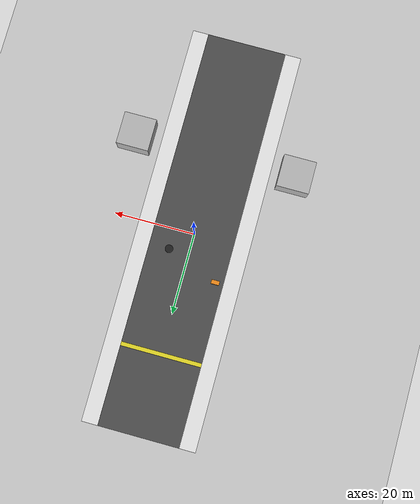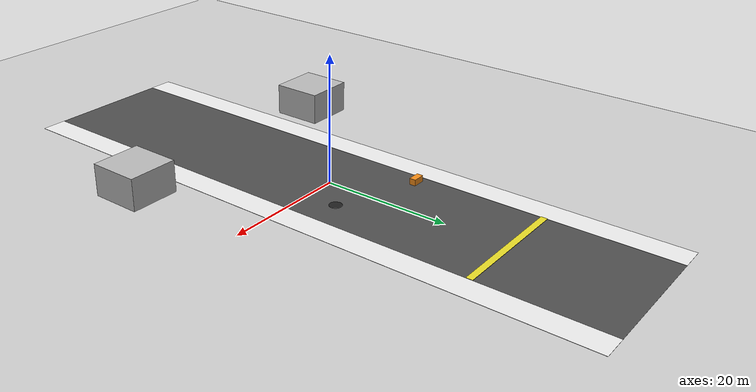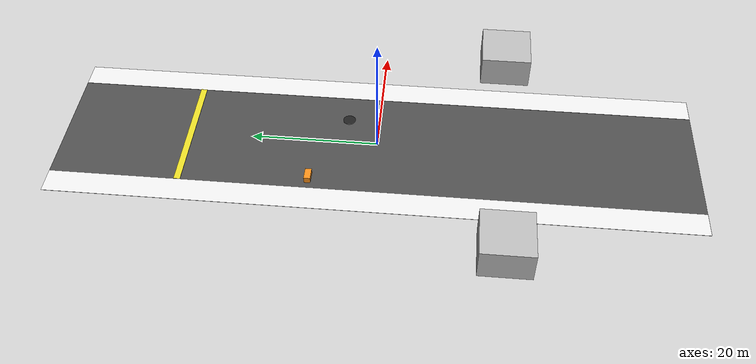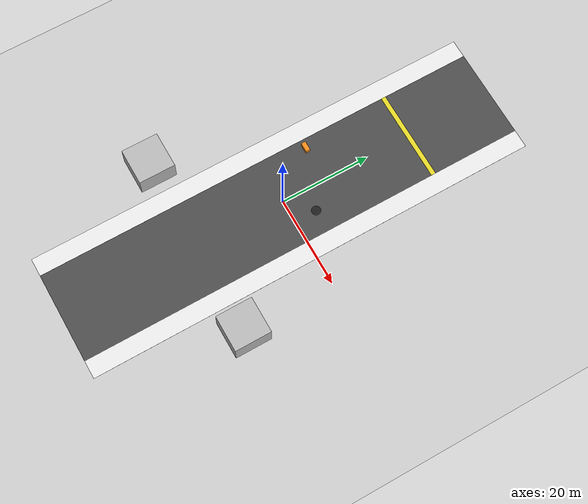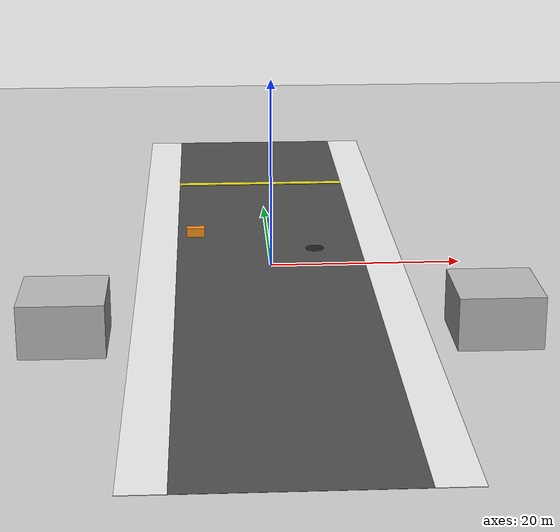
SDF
<?xml version="1.0"?>
<sdf version="1.6">
  <world name="delhi_street">

    <!-- Global light source -->
    <include>
      <uri>model://sun</uri>
    </include>

    <!-- Ground plane with Indian street texture -->
    <model name="ground_plane">
      <static>true</static>
      <link name="link">
        <collision name="collision">
          <geometry>
            <plane>
              <normal>0 0 1</normal>
              <size>100 100</size>
            </plane>
          </geometry>
        </collision>
        <visual name="visual">
          <geometry>
            <plane>
              <normal>0 0 1</normal>
              <size>100 100</size>
            </plane>
          </geometry>
          <material>
            <script>
              <uri>file://media/materials/scripts/gazebo.material</uri>
              <name>Gazebo/Grey</name>
            </script>
          </material>
        </visual>
      </link>
    </model>

    <!-- Main road -->
    <model name="main_road">
      <static>true</static>
      <pose>0 0 0.01 0 0 0</pose>
      <link name="link">
        <visual name="visual">
          <geometry>
            <box>
              <size>20 100 0.02</size>
            </box>
          </geometry>
          <material>
            <script>
              <uri>file://media/materials/scripts/gazebo.material</uri>
              <name>Gazebo/Asphalt</name>
            </script>
          </material>
        </visual>
      </link>
    </model>

    <!-- Sidewalk (uneven) -->
    <model name="sidewalk_left">
      <static>true</static>
      <pose>-12 0 0.02 0 0 0</pose>
      <link name="link">
        <visual name="visual">
          <geometry>
            <box>
              <size>4 100 0.04</size>
            </box>
          </geometry>
          <material>
            <script>
              <uri>file://media/materials/scripts/gazebo.material</uri>
              <name>Gazebo/White</name>
            </script>
          </material>
        </visual>
      </link>
    </model>

    <model name="sidewalk_right">
      <static>true</static>
      <pose>12 0 0.02 0 0 0</pose>
      <link name="link">
        <visual name="visual">
          <geometry>
            <box>
              <size>4 100 0.04</size>
            </box>
          </geometry>
          <material>
            <script>
              <uri>file://media/materials/scripts/gazebo.material</uri>
              <name>Gazebo/White</name>
            </script>
          </material>
        </visual>
      </link>
    </model>

    <!-- Buildings -->
    <model name="building_1">
      <static>true</static>
      <pose>-20 -20 0 0 0 0</pose>
      <link name="link">
        <visual name="visual">
          <geometry>
            <box>
              <size>8 8 10</size>
            </box>
          </geometry>
          <material>
            <script>
              <uri>file://media/materials/scripts/gazebo.material</uri>
              <name>Gazebo/Brick</name>
            </script>
          </material>
        </visual>
        <collision name="collision">
          <geometry>
            <box>
              <size>8 8 10</size>
            </box>
          </geometry>
        </collision>
      </link>
    </model>

    <model name="building_2">
      <static>true</static>
      <pose>20 -20 0 0 0 0</pose>
      <link name="link">
        <visual name="visual">
          <geometry>
            <box>
              <size>8 8 10</size>
            </box>
          </geometry>
          <material>
            <script>
              <uri>file://media/materials/scripts/gazebo.material</uri>
              <name>Gazebo/Brick</name>
            </script>
          </material>
        </visual>
        <collision name="collision">
          <geometry>
            <box>
              <size>8 8 10</size>
            </box>
          </geometry>
        </collision>
      </link>
    </model>

    <!-- Street vendor stall -->
    <model name="vendor_stall">
      <static>true</static>
      <pose>-8 10 0 0 0 0</pose>
      <link name="link">
        <visual name="visual">
          <geometry>
            <box>
              <size>2 1 2</size>
            </box>
          </geometry>
          <material>
            <script>
              <uri>file://media/materials/scripts/gazebo.material</uri>
              <name>Gazebo/Orange</name>
            </script>
          </material>
        </visual>
        <collision name="collision">
          <geometry>
            <box>
              <size>2 1 2</size>
            </box>
          </geometry>
        </collision>
      </link>
    </model>

    <!-- Pothole -->
    <model name="pothole_1">
      <static>true</static>
      <pose>5 5 0 0 0 0</pose>
      <link name="link">
        <visual name="visual">
          <geometry>
            <cylinder>
              <radius>1</radius>
              <length>0.1</length>
            </cylinder>
          </geometry>
          <material>
            <script>
              <uri>file://media/materials/scripts/gazebo.material</uri>
              <name>Gazebo/Black</name>
            </script>
          </material>
        </visual>
        <collision name="collision">
          <geometry>
            <cylinder>
              <radius>1</radius>
              <length>0.1</length>
            </cylinder>
          </geometry>
        </collision>
      </link>
    </model>

    <!-- Speed bump -->
    <model name="speed_bump">
      <static>true</static>
      <pose>0 30 0.05 0 0 0</pose>
      <link name="link">
        <visual name="visual">
          <geometry>
            <box>
              <size>20 1 0.1</size>
            </box>
          </geometry>
          <material>
            <script>
              <uri>file://media/materials/scripts/gazebo.material</uri>
              <name>Gazebo/Yellow</name>
            </script>
          </material>
        </visual>
        <collision name="collision">
          <geometry>
            <box>
              <size>20 1 0.1</size>
            </box>
          </geometry>
        </collision>
      </link>
    </model>

    <!-- Dynamic obstacles will be spawned by the traffic simulator -->

  </world>
</sdf>
